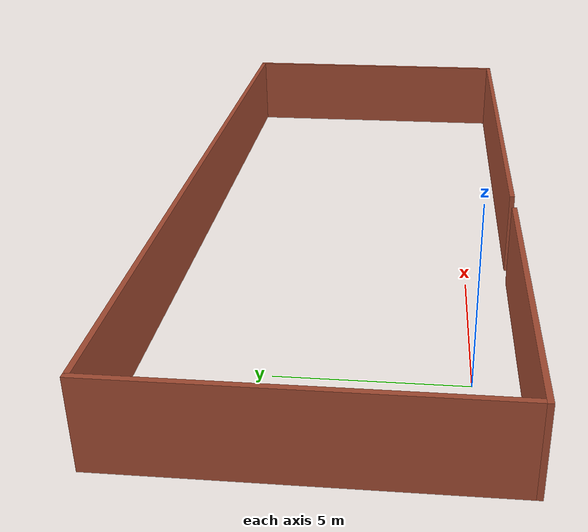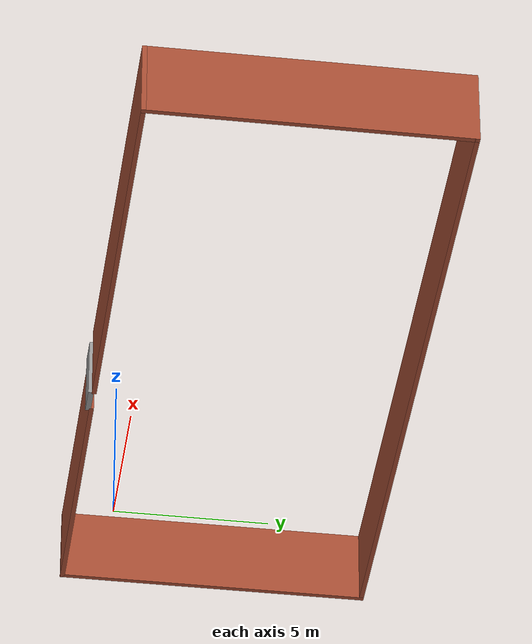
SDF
<?xml version='1.0'?>
<sdf version='1.7'>
  <model name='Untitled'>
    <pose>7.856 3.65283 0 0 -0 0</pose>
    <link name='Door_1'>
      <collision name='Door_1_Collision'>
        <geometry>
          <box>
            <size>0.9 0.17 2</size>
          </box>
        </geometry>
        <pose>0 0 1 0 -0 0</pose>
      </collision>
      <visual name='Door_1_Visual'>
        <pose>0 0 1 0 -0 0</pose>
        <geometry>
          <box>
            <size>0.9 0.17 2</size>
          </box>
        </geometry>
        <material>
          <script>
            <uri>file://media/materials/scripts/gazebo.material</uri>
            <name>Gazebo/Grey</name>
          </script>
        </material>
      </visual>
      <pose>-2.25893 -5.02626 0 0 -0 0</pose>
    </link>
    <link name='Wall_10'>
      <collision name='Wall_10_Collision'>
        <geometry>
          <box>
            <size>10 0.15 2.5</size>
          </box>
        </geometry>
        <pose>0 0 1.25 0 -0 0</pose>
      </collision>
      <visual name='Wall_10_Visual'>
        <pose>0 0 1.25 0 -0 0</pose>
        <geometry>
          <box>
            <size>10 0.15 2.5</size>
          </box>
        </geometry>
        <material>
          <script>
            <uri>file://media/materials/scripts/gazebo.material</uri>
            <name>Gazebo/Bricks</name>
          </script>
          <ambient>1 1 1 1</ambient>
        </material>
        <meta>
          <layer>0</layer>
        </meta>
      </visual>
      <pose>11.55 0 0 0 -0 -1.5708</pose>
    </link>
    <link name='Wall_11'>
      <collision name='Wall_11_Collision'>
        <geometry>
          <box>
            <size>13.5 0.15 2.5</size>
          </box>
        </geometry>
        <pose>0 0 1.25 0 -0 0</pose>
      </collision>
      <visual name='Wall_11_Visual'>
        <pose>0 0 1.25 0 -0 0</pose>
        <geometry>
          <box>
            <size>13.5 0.15 2.5</size>
          </box>
        </geometry>
        <material>
          <script>
            <uri>file://media/materials/scripts/gazebo.material</uri>
            <name>Gazebo/Bricks</name>
          </script>
          <ambient>1 1 1 1</ambient>
        </material>
        <meta>
          <layer>0</layer>
        </meta>
      </visual>
      <pose>4.875 -4.925 0 0 -0 3.14159</pose>
    </link>
    <link name='Wall_7'>
      <collision name='Wall_7_Collision'>
        <geometry>
          <box>
            <size>9 0.15 2.5</size>
          </box>
        </geometry>
        <pose>0 0 1.25 0 -0 0</pose>
      </collision>
      <visual name='Wall_7_Visual'>
        <pose>0 0 1.25 0 -0 0</pose>
        <geometry>
          <box>
            <size>9 0.15 2.5</size>
          </box>
        </geometry>
        <material>
          <script>
            <uri>file://media/materials/scripts/gazebo.material</uri>
            <name>Gazebo/Bricks</name>
          </script>
          <ambient>1 1 1 1</ambient>
        </material>
        <meta>
          <layer>0</layer>
        </meta>
      </visual>
      <pose>-7.125 -4.925 0 0 -0 3.14159</pose>
    </link>
    <link name='Wall_8'>
      <collision name='Wall_8_Collision'>
        <geometry>
          <box>
            <size>10 0.15 2.5</size>
          </box>
        </geometry>
        <pose>0 0 1.25 0 -0 0</pose>
      </collision>
      <visual name='Wall_8_Visual'>
        <pose>0 0 1.25 0 -0 0</pose>
        <geometry>
          <box>
            <size>10 0.15 2.5</size>
          </box>
        </geometry>
        <material>
          <script>
            <uri>file://media/materials/scripts/gazebo.material</uri>
            <name>Gazebo/Bricks</name>
          </script>
          <ambient>1 1 1 1</ambient>
        </material>
        <meta>
          <layer>0</layer>
        </meta>
      </visual>
      <pose>-11.55 0 0 0 -0 1.5708</pose>
    </link>
    <link name='Wall_9'>
      <collision name='Wall_9_Collision'>
        <geometry>
          <box>
            <size>23.25 0.15 2.5</size>
          </box>
        </geometry>
        <pose>0 0 1.25 0 -0 0</pose>
      </collision>
      <visual name='Wall_9_Visual'>
        <pose>0 0 1.25 0 -0 0</pose>
        <geometry>
          <box>
            <size>23.25 0.15 2.5</size>
          </box>
        </geometry>
        <material>
          <script>
            <uri>file://media/materials/scripts/gazebo.material</uri>
            <name>Gazebo/Bricks</name>
          </script>
          <ambient>1 1 1 1</ambient>
        </material>
        <meta>
          <layer>0</layer>
        </meta>
      </visual>
      <pose>-0 4.925 0 0 -0 0</pose>
    </link>
    <static>1</static>
  </model>
</sdf>
